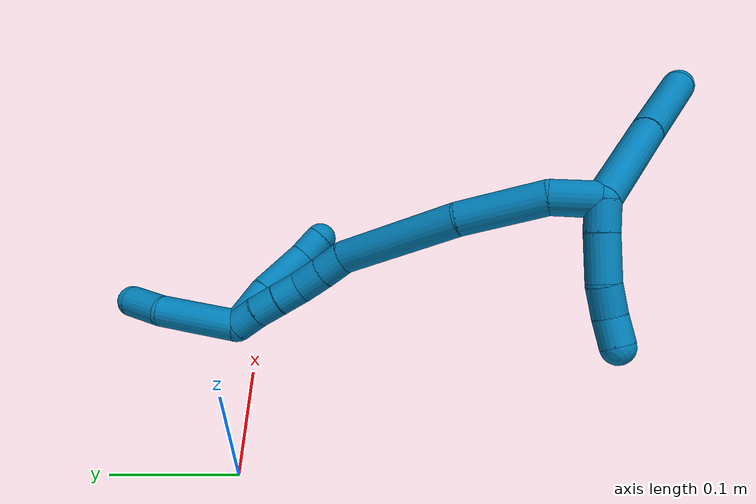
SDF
<sdf version="1.7">
 <world name="default">
  <model name="9">
   <static>0</static>
   <link name="9">
    <collision name="collision-cylinder-e_1_2_8">
     <pose>0.003507 -0.000726 0.039996 0.018149 0.087456 0.000794</pose>
     <geometry><cylinder><radius>0.0125</radius><length>0.080313</length></cylinder></geometry>
     <surface>
      <friction><ode><mu>1.16</mu><mu2>1.16</mu2><slip1>0</slip1><slip2>0</slip2></ode></friction>
      <contact><ode><kp>1e+06</kp><kd>1</kd><max_vel>0</max_vel><min_depth>0.001</min_depth></ode></contact>
     </surface>
    </collision>
    <visual name="visual-cylinder-e_1_2_8">
     <pose>0.003507 -0.000726 0.039996 0.018149 0.087456 0.000794</pose>
     <geometry><cylinder><radius>0.0125</radius><length>0.080313</length></cylinder></geometry>
     <material><ambient>0 0.490196 0.709804 1</ambient></material>
    </visual>
    <collision name="collision-cylinder-e_2_8_6">
     <pose>0.012293 -0.002387 0.114422 0.027157 0.152067 0.002069</pose>
     <geometry><cylinder><radius>0.0125</radius><length>0.069687</length></cylinder></geometry>
     <surface>
      <friction><ode><mu>1.16</mu><mu2>1.16</mu2><slip1>0</slip1><slip2>0</slip2></ode></friction>
      <contact><ode><kp>1e+06</kp><kd>1</kd><max_vel>0</max_vel><min_depth>0.001</min_depth></ode></contact>
     </surface>
    </collision>
    <visual name="visual-cylinder-e_2_8_6">
     <pose>0.012293 -0.002387 0.114422 0.027157 0.152067 0.002069</pose>
     <geometry><cylinder><radius>0.0125</radius><length>0.069687</length></cylinder></geometry>
     <material><ambient>0 0.490196 0.709804 1</ambient></material>
    </visual>
    <collision name="collision-cylinder-e_1_2_9">
     <pose>0.005619 -0.005346 -0.008086 2.55743 0.52533 1.45923</pose>
     <geometry><cylinder><radius>0.0125</radius><length>0.022409</length></cylinder></geometry>
     <surface>
      <friction><ode><mu>1.16</mu><mu2>1.16</mu2><slip1>0</slip1><slip2>0</slip2></ode></friction>
      <contact><ode><kp>1e+06</kp><kd>1</kd><max_vel>0</max_vel><min_depth>0.001</min_depth></ode></contact>
     </surface>
    </collision>
    <visual name="visual-cylinder-e_1_2_9">
     <pose>0.005619 -0.005346 -0.008086 2.55743 0.52533 1.45923</pose>
     <geometry><cylinder><radius>0.0125</radius><length>0.022409</length></cylinder></geometry>
     <material><ambient>0 0.490196 0.709804 1</ambient></material>
    </visual>
    <collision name="collision-cylinder-e_2_9_10">
     <pose>0.019762 -0.019821 -0.027629 2.46876 0.526994 1.31413</pose>
     <geometry><cylinder><radius>0.0125</radius><length>0.033897</length></cylinder></geometry>
     <surface>
      <friction><ode><mu>1.16</mu><mu2>1.16</mu2><slip1>0</slip1><slip2>0</slip2></ode></friction>
      <contact><ode><kp>1e+06</kp><kd>1</kd><max_vel>0</max_vel><min_depth>0.001</min_depth></ode></contact>
     </surface>
    </collision>
    <visual name="visual-cylinder-e_2_9_10">
     <pose>0.019762 -0.019821 -0.027629 2.46876 0.526994 1.31413</pose>
     <geometry><cylinder><radius>0.0125</radius><length>0.033897</length></cylinder></geometry>
     <material><ambient>0 0.490196 0.709804 1</ambient></material>
    </visual>
    <collision name="collision-cylinder-e_3_10_11">
     <pose>0.034748 -0.03635 -0.044792 2.22777 0.605044 1.13132</pose>
     <geometry><cylinder><radius>0.0125</radius><length>0.022721</length></cylinder></geometry>
     <surface>
      <friction><ode><mu>1.16</mu><mu2>1.16</mu2><slip1>0</slip1><slip2>0</slip2></ode></friction>
      <contact><ode><kp>1e+06</kp><kd>1</kd><max_vel>0</max_vel><min_depth>0.001</min_depth></ode></contact>
     </surface>
    </collision>
    <visual name="visual-cylinder-e_3_10_11">
     <pose>0.034748 -0.03635 -0.044792 2.22777 0.605044 1.13132</pose>
     <geometry><cylinder><radius>0.0125</radius><length>0.022721</length></cylinder></geometry>
     <material><ambient>0 0.490196 0.709804 1</ambient></material>
    </visual>
    <collision name="collision-cylinder-e_4_11_5">
     <pose>0.04497 -0.051118 -0.056941 2.28923 0.366716 0.775543</pose>
     <geometry><cylinder><radius>0.0125</radius><length>0.020973</length></cylinder></geometry>
     <surface>
      <friction><ode><mu>1.16</mu><mu2>1.16</mu2><slip1>0</slip1><slip2>0</slip2></ode></friction>
      <contact><ode><kp>1e+06</kp><kd>1</kd><max_vel>0</max_vel><min_depth>0.001</min_depth></ode></contact>
     </surface>
    </collision>
    <visual name="visual-cylinder-e_4_11_5">
     <pose>0.04497 -0.051118 -0.056941 2.28923 0.366716 0.775543</pose>
     <geometry><cylinder><radius>0.0125</radius><length>0.020973</length></cylinder></geometry>
     <material><ambient>0 0.490196 0.709804 1</ambient></material>
    </visual>
    <collision name="collision-cylinder-e_1_2_12">
     <pose>0.005109 0.015832 -0.006178 -1.94284 0.292022 -0.424015</pose>
     <geometry><cylinder><radius>0.0125</radius><length>0.035491</length></cylinder></geometry>
     <surface>
      <friction><ode><mu>1.16</mu><mu2>1.16</mu2><slip1>0</slip1><slip2>0</slip2></ode></friction>
      <contact><ode><kp>1e+06</kp><kd>1</kd><max_vel>0</max_vel><min_depth>0.001</min_depth></ode></contact>
     </surface>
    </collision>
    <visual name="visual-cylinder-e_1_2_12">
     <pose>0.005109 0.015832 -0.006178 -1.94284 0.292022 -0.424015</pose>
     <geometry><cylinder><radius>0.0125</radius><length>0.035491</length></cylinder></geometry>
     <material><ambient>0 0.490196 0.709804 1</ambient></material>
    </visual>
    <collision name="collision-cylinder-e_2_12_13">
     <pose>0.025756 0.05548 -0.0282 -2.15782 0.497607 -0.885544</pose>
     <geometry><cylinder><radius>0.0125</radius><length>0.065108</length></cylinder></geometry>
     <surface>
      <friction><ode><mu>1.16</mu><mu2>1.16</mu2><slip1>0</slip1><slip2>0</slip2></ode></friction>
      <contact><ode><kp>1e+06</kp><kd>1</kd><max_vel>0</max_vel><min_depth>0.001</min_depth></ode></contact>
     </surface>
    </collision>
    <visual name="visual-cylinder-e_2_12_13">
     <pose>0.025756 0.05548 -0.0282 -2.15782 0.497607 -0.885544</pose>
     <geometry><cylinder><radius>0.0125</radius><length>0.065108</length></cylinder></geometry>
     <material><ambient>0 0.490196 0.709804 1</ambient></material>
    </visual>
    <collision name="collision-cylinder-e_3_13_14">
     <pose>0.070989 0.111427 -0.064856 -2.14558 0.659737 -1.12394</pose>
     <geometry><cylinder><radius>0.0125</radius><length>0.096894</length></cylinder></geometry>
     <surface>
      <friction><ode><mu>1.16</mu><mu2>1.16</mu2><slip1>0</slip1><slip2>0</slip2></ode></friction>
      <contact><ode><kp>1e+06</kp><kd>1</kd><max_vel>0</max_vel><min_depth>0.001</min_depth></ode></contact>
     </surface>
    </collision>
    <visual name="visual-cylinder-e_3_13_14">
     <pose>0.070989 0.111427 -0.064856 -2.14558 0.659737 -1.12394</pose>
     <geometry><cylinder><radius>0.0125</radius><length>0.096894</length></cylinder></geometry>
     <material><ambient>0 0.490196 0.709804 1</ambient></material>
    </visual>
    <collision name="collision-cylinder-e_4_14_15">
     <pose>0.106882 0.148068 -0.092746 -2.57419 0.636121 -1.69201</pose>
     <geometry><cylinder><radius>0.0125</radius><length>0.020871</length></cylinder></geometry>
     <surface>
      <friction><ode><mu>1.16</mu><mu2>1.16</mu2><slip1>0</slip1><slip2>0</slip2></ode></friction>
      <contact><ode><kp>1e+06</kp><kd>1</kd><max_vel>0</max_vel><min_depth>0.001</min_depth></ode></contact>
     </surface>
    </collision>
    <visual name="visual-cylinder-e_4_14_15">
     <pose>0.106882 0.148068 -0.092746 -2.57419 0.636121 -1.69201</pose>
     <geometry><cylinder><radius>0.0125</radius><length>0.020871</length></cylinder></geometry>
     <material><ambient>0 0.490196 0.709804 1</ambient></material>
    </visual>
    <collision name="collision-cylinder-e_5_15_16">
     <pose>0.119095 0.157571 -0.107261 -2.55036 0.591332 -1.57098</pose>
     <geometry><cylinder><radius>0.0125</radius><length>0.021575</length></cylinder></geometry>
     <surface>
      <friction><ode><mu>1.16</mu><mu2>1.16</mu2><slip1>0</slip1><slip2>0</slip2></ode></friction>
      <contact><ode><kp>1e+06</kp><kd>1</kd><max_vel>0</max_vel><min_depth>0.001</min_depth></ode></contact>
     </surface>
    </collision>
    <visual name="visual-cylinder-e_5_15_16">
     <pose>0.119095 0.157571 -0.107261 -2.55036 0.591332 -1.57098</pose>
     <geometry><cylinder><radius>0.0125</radius><length>0.021575</length></cylinder></geometry>
     <material><ambient>0 0.490196 0.709804 1</ambient></material>
    </visual>
    <collision name="collision-cylinder-e_6_16_17">
     <pose>0.129439 0.167546 -0.122245 -2.55812 0.446501 -1.29469</pose>
     <geometry><cylinder><radius>0.0125</radius><length>0.020057</length></cylinder></geometry>
     <surface>
      <friction><ode><mu>1.16</mu><mu2>1.16</mu2><slip1>0</slip1><slip2>0</slip2></ode></friction>
      <contact><ode><kp>1e+06</kp><kd>1</kd><max_vel>0</max_vel><min_depth>0.001</min_depth></ode></contact>
     </surface>
    </collision>
    <visual name="visual-cylinder-e_6_16_17">
     <pose>0.129439 0.167546 -0.122245 -2.55812 0.446501 -1.29469</pose>
     <geometry><cylinder><radius>0.0125</radius><length>0.020057</length></cylinder></geometry>
     <material><ambient>0 0.490196 0.709804 1</ambient></material>
    </visual>
    <collision name="collision-cylinder-e_7_17_18">
     <pose>0.138583 0.177621 -0.136929 -2.52178 0.50216 -1.35068</pose>
     <geometry><cylinder><radius>0.0125</radius><length>0.020001</length></cylinder></geometry>
     <surface>
      <friction><ode><mu>1.16</mu><mu2>1.16</mu2><slip1>0</slip1><slip2>0</slip2></ode></friction>
      <contact><ode><kp>1e+06</kp><kd>1</kd><max_vel>0</max_vel><min_depth>0.001</min_depth></ode></contact>
     </surface>
    </collision>
    <visual name="visual-cylinder-e_7_17_18">
     <pose>0.138583 0.177621 -0.136929 -2.52178 0.50216 -1.35068</pose>
     <geometry><cylinder><radius>0.0125</radius><length>0.020001</length></cylinder></geometry>
     <material><ambient>0 0.490196 0.709804 1</ambient></material>
    </visual>
    <collision name="collision-cylinder-e_8_18_1">
     <pose>0.148979 0.187056 -0.151136 -2.59084 0.59218 -1.64735</pose>
     <geometry><cylinder><radius>0.0125</radius><length>0.020003</length></cylinder></geometry>
     <surface>
      <friction><ode><mu>1.16</mu><mu2>1.16</mu2><slip1>0</slip1><slip2>0</slip2></ode></friction>
      <contact><ode><kp>1e+06</kp><kd>1</kd><max_vel>0</max_vel><min_depth>0.001</min_depth></ode></contact>
     </surface>
    </collision>
    <visual name="visual-cylinder-e_8_18_1">
     <pose>0.148979 0.187056 -0.151136 -2.59084 0.59218 -1.64735</pose>
     <geometry><cylinder><radius>0.0125</radius><length>0.020003</length></cylinder></geometry>
     <material><ambient>0 0.490196 0.709804 1</ambient></material>
    </visual>
    <collision name="collision-cylinder-e_1_1_19">
     <pose>0.1619 0.222237 -0.167568 -1.86549 0.223902 -0.300928</pose>
     <geometry><cylinder><radius>0.0125</radius><length>0.066104</length></cylinder></geometry>
     <surface>
      <friction><ode><mu>1.16</mu><mu2>1.16</mu2><slip1>0</slip1><slip2>0</slip2></ode></friction>
      <contact><ode><kp>1e+06</kp><kd>1</kd><max_vel>0</max_vel><min_depth>0.001</min_depth></ode></contact>
     </surface>
    </collision>
    <visual name="visual-cylinder-e_1_1_19">
     <pose>0.1619 0.222237 -0.167568 -1.86549 0.223902 -0.300928</pose>
     <geometry><cylinder><radius>0.0125</radius><length>0.066104</length></cylinder></geometry>
     <material><ambient>0 0.490196 0.709804 1</ambient></material>
    </visual>
    <collision name="collision-cylinder-e_2_19_4">
     <pose>0.176298 0.268446 -0.177985 -1.63942 0.429603 -0.459116</pose>
     <geometry><cylinder><radius>0.0125</radius><length>0.033896</length></cylinder></geometry>
     <surface>
      <friction><ode><mu>1.16</mu><mu2>1.16</mu2><slip1>0</slip1><slip2>0</slip2></ode></friction>
      <contact><ode><kp>1e+06</kp><kd>1</kd><max_vel>0</max_vel><min_depth>0.001</min_depth></ode></contact>
     </surface>
    </collision>
    <visual name="visual-cylinder-e_2_19_4">
     <pose>0.176298 0.268446 -0.177985 -1.63942 0.429603 -0.459116</pose>
     <geometry><cylinder><radius>0.0125</radius><length>0.033896</length></cylinder></geometry>
     <material><ambient>0 0.490196 0.709804 1</ambient></material>
    </visual>
    <collision name="collision-cylinder-e_1_1_20">
     <pose>0.153166 0.19138 -0.140265 0.001065 -0.0776 -4.1e-05</pose>
     <geometry><cylinder><radius>0.0125</radius><length>0.035993</length></cylinder></geometry>
     <surface>
      <friction><ode><mu>1.16</mu><mu2>1.16</mu2><slip1>0</slip1><slip2>0</slip2></ode></friction>
      <contact><ode><kp>1e+06</kp><kd>1</kd><max_vel>0</max_vel><min_depth>0.001</min_depth></ode></contact>
     </surface>
    </collision>
    <visual name="visual-cylinder-e_1_1_20">
     <pose>0.153166 0.19138 -0.140265 0.001065 -0.0776 -4.1e-05</pose>
     <geometry><cylinder><radius>0.0125</radius><length>0.035993</length></cylinder></geometry>
     <material><ambient>0 0.490196 0.709804 1</ambient></material>
    </visual>
    <collision name="collision-cylinder-e_2_20_21">
     <pose>0.149832 0.187562 -0.101413 0.179715 -0.090977 -0.008203</pose>
     <geometry><cylinder><radius>0.0125</radius><length>0.042681</length></cylinder></geometry>
     <surface>
      <friction><ode><mu>1.16</mu><mu2>1.16</mu2><slip1>0</slip1><slip2>0</slip2></ode></friction>
      <contact><ode><kp>1e+06</kp><kd>1</kd><max_vel>0</max_vel><min_depth>0.001</min_depth></ode></contact>
     </surface>
    </collision>
    <visual name="visual-cylinder-e_2_20_21">
     <pose>0.149832 0.187562 -0.101413 0.179715 -0.090977 -0.008203</pose>
     <geometry><cylinder><radius>0.0125</radius><length>0.042681</length></cylinder></geometry>
     <material><ambient>0 0.490196 0.709804 1</ambient></material>
    </visual>
    <collision name="collision-cylinder-e_3_21_3">
     <pose>0.145712 0.182511 -0.070141 0.120222 -0.2061 -0.012448</pose>
     <geometry><cylinder><radius>0.0125</radius><length>0.021326</length></cylinder></geometry>
     <surface>
      <friction><ode><mu>1.16</mu><mu2>1.16</mu2><slip1>0</slip1><slip2>0</slip2></ode></friction>
      <contact><ode><kp>1e+06</kp><kd>1</kd><max_vel>0</max_vel><min_depth>0.001</min_depth></ode></contact>
     </surface>
    </collision>
    <visual name="visual-cylinder-e_3_21_3">
     <pose>0.145712 0.182511 -0.070141 0.120222 -0.2061 -0.012448</pose>
     <geometry><cylinder><radius>0.0125</radius><length>0.021326</length></cylinder></geometry>
     <material><ambient>0 0.490196 0.709804 1</ambient></material>
    </visual>
    <collision name="collision-sphere-3">
     <pose>0.143529 0.181259 -0.059779 0 -0 0</pose>
     <geometry><sphere><radius>0.0125</radius></sphere></geometry>
     <surface>
      <friction><ode><mu>1.16</mu><mu2>1.16</mu2><slip1>0</slip1><slip2>0</slip2></ode></friction>
      <contact><ode><kp>1e+06</kp><kd>1</kd><max_vel>0</max_vel><min_depth>0.001</min_depth></ode></contact>
     </surface>
    </collision>
    <visual name="visual-sphere-3">
     <pose>0.143529 0.181259 -0.059779 0 -0 0</pose>
     <geometry><sphere><radius>0.0125</radius></sphere></geometry>
     <material><ambient>0 0.490196 0.709804 1</ambient></material>
    </visual>
    <collision name="collision-sphere-21">
     <pose>0.147894 0.183763 -0.080503 0 -0 0</pose>
     <geometry><sphere><radius>0.0125</radius></sphere></geometry>
     <surface>
      <friction><ode><mu>1.16</mu><mu2>1.16</mu2><slip1>0</slip1><slip2>0</slip2></ode></friction>
      <contact><ode><kp>1e+06</kp><kd>1</kd><max_vel>0</max_vel><min_depth>0.001</min_depth></ode></contact>
     </surface>
    </collision>
    <visual name="visual-sphere-21">
     <pose>0.147894 0.183763 -0.080503 0 -0 0</pose>
     <geometry><sphere><radius>0.0125</radius></sphere></geometry>
     <material><ambient>0 0.490196 0.709804 1</ambient></material>
    </visual>
    <collision name="collision-sphere-20">
     <pose>0.151771 0.191361 -0.122323 0 -0 0</pose>
     <geometry><sphere><radius>0.0125</radius></sphere></geometry>
     <surface>
      <friction><ode><mu>1.16</mu><mu2>1.16</mu2><slip1>0</slip1><slip2>0</slip2></ode></friction>
      <contact><ode><kp>1e+06</kp><kd>1</kd><max_vel>0</max_vel><min_depth>0.001</min_depth></ode></contact>
     </surface>
    </collision>
    <visual name="visual-sphere-20">
     <pose>0.151771 0.191361 -0.122323 0 -0 0</pose>
     <geometry><sphere><radius>0.0125</radius></sphere></geometry>
     <material><ambient>0 0.490196 0.709804 1</ambient></material>
    </visual>
    <collision name="collision-sphere-4">
     <pose>0.183357 0.283818 -0.179041 0 -0 0</pose>
     <geometry><sphere><radius>0.0125</radius></sphere></geometry>
     <surface>
      <friction><ode><mu>1.16</mu><mu2>1.16</mu2><slip1>0</slip1><slip2>0</slip2></ode></friction>
      <contact><ode><kp>1e+06</kp><kd>1</kd><max_vel>0</max_vel><min_depth>0.001</min_depth></ode></contact>
     </surface>
    </collision>
    <visual name="visual-sphere-4">
     <pose>0.183357 0.283818 -0.179041 0 -0 0</pose>
     <geometry><sphere><radius>0.0125</radius></sphere></geometry>
     <material><ambient>0 0.490196 0.709804 1</ambient></material>
    </visual>
    <collision name="collision-sphere-11">
     <pose>0.04121 -0.043749 -0.050498 0 -0 0</pose>
     <geometry><sphere><radius>0.0125</radius></sphere></geometry>
     <surface>
      <friction><ode><mu>1.16</mu><mu2>1.16</mu2><slip1>0</slip1><slip2>0</slip2></ode></friction>
      <contact><ode><kp>1e+06</kp><kd>1</kd><max_vel>0</max_vel><min_depth>0.001</min_depth></ode></contact>
     </surface>
    </collision>
    <visual name="visual-sphere-11">
     <pose>0.04121 -0.043749 -0.050498 0 -0 0</pose>
     <geometry><sphere><radius>0.0125</radius></sphere></geometry>
     <material><ambient>0 0.490196 0.709804 1</ambient></material>
    </visual>
    <collision name="collision-sphere-10">
     <pose>0.028286 -0.028951 -0.039085 0 -0 0</pose>
     <geometry><sphere><radius>0.0125</radius></sphere></geometry>
     <surface>
      <friction><ode><mu>1.16</mu><mu2>1.16</mu2><slip1>0</slip1><slip2>0</slip2></ode></friction>
      <contact><ode><kp>1e+06</kp><kd>1</kd><max_vel>0</max_vel><min_depth>0.001</min_depth></ode></contact>
     </surface>
    </collision>
    <visual name="visual-sphere-10">
     <pose>0.028286 -0.028951 -0.039085 0 -0 0</pose>
     <geometry><sphere><radius>0.0125</radius></sphere></geometry>
     <material><ambient>0 0.490196 0.709804 1</ambient></material>
    </visual>
    <collision name="collision-sphere-6">
     <pose>0.017571 -0.003322 0.14885 0 -0 0</pose>
     <geometry><sphere><radius>0.0125</radius></sphere></geometry>
     <surface>
      <friction><ode><mu>1.16</mu><mu2>1.16</mu2><slip1>0</slip1><slip2>0</slip2></ode></friction>
      <contact><ode><kp>1e+06</kp><kd>1</kd><max_vel>0</max_vel><min_depth>0.001</min_depth></ode></contact>
     </surface>
    </collision>
    <visual name="visual-sphere-6">
     <pose>0.017571 -0.003322 0.14885 0 -0 0</pose>
     <geometry><sphere><radius>0.0125</radius></sphere></geometry>
     <material><ambient>0 0.490196 0.709804 1</ambient></material>
    </visual>
    <collision name="collision-sphere-9">
     <pose>0.011238 -0.010692 -0.016172 0 -0 0</pose>
     <geometry><sphere><radius>0.0125</radius></sphere></geometry>
     <surface>
      <friction><ode><mu>1.16</mu><mu2>1.16</mu2><slip1>0</slip1><slip2>0</slip2></ode></friction>
      <contact><ode><kp>1e+06</kp><kd>1</kd><max_vel>0</max_vel><min_depth>0.001</min_depth></ode></contact>
     </surface>
    </collision>
    <visual name="visual-sphere-9">
     <pose>0.011238 -0.010692 -0.016172 0 -0 0</pose>
     <geometry><sphere><radius>0.0125</radius></sphere></geometry>
     <material><ambient>0 0.490196 0.709804 1</ambient></material>
    </visual>
    <collision name="collision-sphere-2">
     <geometry><sphere><radius>0.0125</radius></sphere></geometry>
     <surface>
      <friction><ode><mu>1.16</mu><mu2>1.16</mu2><slip1>0</slip1><slip2>0</slip2></ode></friction>
      <contact><ode><kp>1e+06</kp><kd>1</kd><max_vel>0</max_vel><min_depth>0.001</min_depth></ode></contact>
     </surface>
    </collision>
    <visual name="visual-sphere-2">
     <geometry><sphere><radius>0.0125</radius></sphere></geometry>
     <material><ambient>0 0.490196 0.709804 1</ambient></material>
    </visual>
    <collision name="collision-sphere-19">
     <pose>0.169239 0.253074 -0.176928 0 -0 0</pose>
     <geometry><sphere><radius>0.0125</radius></sphere></geometry>
     <surface>
      <friction><ode><mu>1.16</mu><mu2>1.16</mu2><slip1>0</slip1><slip2>0</slip2></ode></friction>
      <contact><ode><kp>1e+06</kp><kd>1</kd><max_vel>0</max_vel><min_depth>0.001</min_depth></ode></contact>
     </surface>
    </collision>
    <visual name="visual-sphere-19">
     <pose>0.169239 0.253074 -0.176928 0 -0 0</pose>
     <geometry><sphere><radius>0.0125</radius></sphere></geometry>
     <material><ambient>0 0.490196 0.709804 1</ambient></material>
    </visual>
    <collision name="collision-sphere-8">
     <pose>0.007015 -0.001452 0.079993 0 -0 0</pose>
     <geometry><sphere><radius>0.0125</radius></sphere></geometry>
     <surface>
      <friction><ode><mu>1.16</mu><mu2>1.16</mu2><slip1>0</slip1><slip2>0</slip2></ode></friction>
      <contact><ode><kp>1e+06</kp><kd>1</kd><max_vel>0</max_vel><min_depth>0.001</min_depth></ode></contact>
     </surface>
    </collision>
    <visual name="visual-sphere-8">
     <pose>0.007015 -0.001452 0.079993 0 -0 0</pose>
     <geometry><sphere><radius>0.0125</radius></sphere></geometry>
     <material><ambient>0 0.490196 0.709804 1</ambient></material>
    </visual>
    <collision name="collision-sphere-5">
     <pose>0.04873 -0.058488 -0.063385 0 -0 0</pose>
     <geometry><sphere><radius>0.0125</radius></sphere></geometry>
     <surface>
      <friction><ode><mu>1.16</mu><mu2>1.16</mu2><slip1>0</slip1><slip2>0</slip2></ode></friction>
      <contact><ode><kp>1e+06</kp><kd>1</kd><max_vel>0</max_vel><min_depth>0.001</min_depth></ode></contact>
     </surface>
    </collision>
    <visual name="visual-sphere-5">
     <pose>0.04873 -0.058488 -0.063385 0 -0 0</pose>
     <geometry><sphere><radius>0.0125</radius></sphere></geometry>
     <material><ambient>0 0.490196 0.709804 1</ambient></material>
    </visual>
    <collision name="collision-sphere-12">
     <pose>0.010217 0.031663 -0.012356 0 -0 0</pose>
     <geometry><sphere><radius>0.0125</radius></sphere></geometry>
     <surface>
      <friction><ode><mu>1.16</mu><mu2>1.16</mu2><slip1>0</slip1><slip2>0</slip2></ode></friction>
      <contact><ode><kp>1e+06</kp><kd>1</kd><max_vel>0</max_vel><min_depth>0.001</min_depth></ode></contact>
     </surface>
    </collision>
    <visual name="visual-sphere-12">
     <pose>0.010217 0.031663 -0.012356 0 -0 0</pose>
     <geometry><sphere><radius>0.0125</radius></sphere></geometry>
     <material><ambient>0 0.490196 0.709804 1</ambient></material>
    </visual>
    <collision name="collision-sphere-13">
     <pose>0.041295 0.079297 -0.044044 0 -0 0</pose>
     <geometry><sphere><radius>0.0125</radius></sphere></geometry>
     <surface>
      <friction><ode><mu>1.16</mu><mu2>1.16</mu2><slip1>0</slip1><slip2>0</slip2></ode></friction>
      <contact><ode><kp>1e+06</kp><kd>1</kd><max_vel>0</max_vel><min_depth>0.001</min_depth></ode></contact>
     </surface>
    </collision>
    <visual name="visual-sphere-13">
     <pose>0.041295 0.079297 -0.044044 0 -0 0</pose>
     <geometry><sphere><radius>0.0125</radius></sphere></geometry>
     <material><ambient>0 0.490196 0.709804 1</ambient></material>
    </visual>
    <collision name="collision-sphere-14">
     <pose>0.100682 0.143556 -0.085667 0 -0 0</pose>
     <geometry><sphere><radius>0.0125</radius></sphere></geometry>
     <surface>
      <friction><ode><mu>1.16</mu><mu2>1.16</mu2><slip1>0</slip1><slip2>0</slip2></ode></friction>
      <contact><ode><kp>1e+06</kp><kd>1</kd><max_vel>0</max_vel><min_depth>0.001</min_depth></ode></contact>
     </surface>
    </collision>
    <visual name="visual-sphere-14">
     <pose>0.100682 0.143556 -0.085667 0 -0 0</pose>
     <geometry><sphere><radius>0.0125</radius></sphere></geometry>
     <material><ambient>0 0.490196 0.709804 1</ambient></material>
    </visual>
    <collision name="collision-sphere-15">
     <pose>0.113081 0.152579 -0.099825 0 -0 0</pose>
     <geometry><sphere><radius>0.0125</radius></sphere></geometry>
     <surface>
      <friction><ode><mu>1.16</mu><mu2>1.16</mu2><slip1>0</slip1><slip2>0</slip2></ode></friction>
      <contact><ode><kp>1e+06</kp><kd>1</kd><max_vel>0</max_vel><min_depth>0.001</min_depth></ode></contact>
     </surface>
    </collision>
    <visual name="visual-sphere-15">
     <pose>0.113081 0.152579 -0.099825 0 -0 0</pose>
     <geometry><sphere><radius>0.0125</radius></sphere></geometry>
     <material><ambient>0 0.490196 0.709804 1</ambient></material>
    </visual>
    <collision name="collision-sphere-16">
     <pose>0.125109 0.162563 -0.114696 0 -0 0</pose>
     <geometry><sphere><radius>0.0125</radius></sphere></geometry>
     <surface>
      <friction><ode><mu>1.16</mu><mu2>1.16</mu2><slip1>0</slip1><slip2>0</slip2></ode></friction>
      <contact><ode><kp>1e+06</kp><kd>1</kd><max_vel>0</max_vel><min_depth>0.001</min_depth></ode></contact>
     </surface>
    </collision>
    <visual name="visual-sphere-16">
     <pose>0.125109 0.162563 -0.114696 0 -0 0</pose>
     <geometry><sphere><radius>0.0125</radius></sphere></geometry>
     <material><ambient>0 0.490196 0.709804 1</ambient></material>
    </visual>
    <collision name="collision-sphere-17">
     <pose>0.133769 0.172529 -0.129794 0 -0 0</pose>
     <geometry><sphere><radius>0.0125</radius></sphere></geometry>
     <surface>
      <friction><ode><mu>1.16</mu><mu2>1.16</mu2><slip1>0</slip1><slip2>0</slip2></ode></friction>
      <contact><ode><kp>1e+06</kp><kd>1</kd><max_vel>0</max_vel><min_depth>0.001</min_depth></ode></contact>
     </surface>
    </collision>
    <visual name="visual-sphere-17">
     <pose>0.133769 0.172529 -0.129794 0 -0 0</pose>
     <geometry><sphere><radius>0.0125</radius></sphere></geometry>
     <material><ambient>0 0.490196 0.709804 1</ambient></material>
    </visual>
    <collision name="collision-sphere-18">
     <pose>0.143396 0.182713 -0.144064 0 -0 0</pose>
     <geometry><sphere><radius>0.0125</radius></sphere></geometry>
     <surface>
      <friction><ode><mu>1.16</mu><mu2>1.16</mu2><slip1>0</slip1><slip2>0</slip2></ode></friction>
      <contact><ode><kp>1e+06</kp><kd>1</kd><max_vel>0</max_vel><min_depth>0.001</min_depth></ode></contact>
     </surface>
    </collision>
    <visual name="visual-sphere-18">
     <pose>0.143396 0.182713 -0.144064 0 -0 0</pose>
     <geometry><sphere><radius>0.0125</radius></sphere></geometry>
     <material><ambient>0 0.490196 0.709804 1</ambient></material>
    </visual>
    <collision name="collision-sphere-1">
     <pose>0.154562 0.191399 -0.158207 0 -0 0</pose>
     <geometry><sphere><radius>0.0125</radius></sphere></geometry>
     <surface>
      <friction><ode><mu>1.16</mu><mu2>1.16</mu2><slip1>0</slip1><slip2>0</slip2></ode></friction>
      <contact><ode><kp>1e+06</kp><kd>1</kd><max_vel>0</max_vel><min_depth>0.001</min_depth></ode></contact>
     </surface>
    </collision>
    <visual name="visual-sphere-1">
     <pose>0.154562 0.191399 -0.158207 0 -0 0</pose>
     <geometry><sphere><radius>0.0125</radius></sphere></geometry>
     <material><ambient>0 0.490196 0.709804 1</ambient></material>
    </visual>
    <inertial>
     <pose>0.076327 0.095703 -0.054573 0 -0 0</pose>
     <mass>0.75</mass>
     <inertia>
      <ixx>0.000104</ixx>
      <ixy>0</ixy>
      <ixz>0</ixz>
      <iyy>3.8e-05</iyy>
      <iyz>0</iyz>
      <izz>-0.000186</izz>
     </inertia>
    </inertial>
   </link>
   <pose>0.082246 -0.25928 0.206337 0.93251 1.27856 0.380338</pose>
  </model>
 </world>
</sdf>
